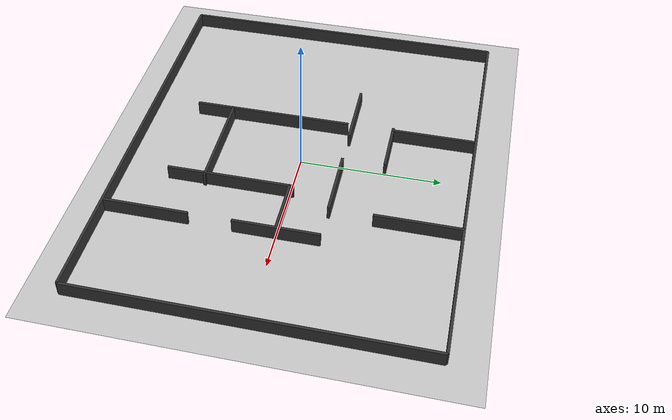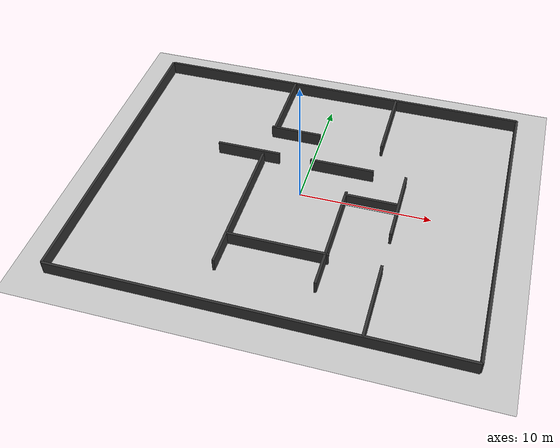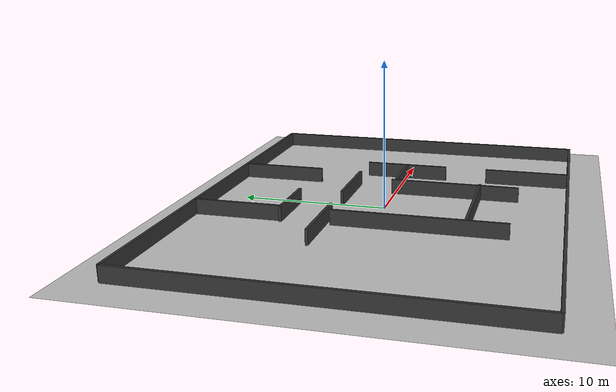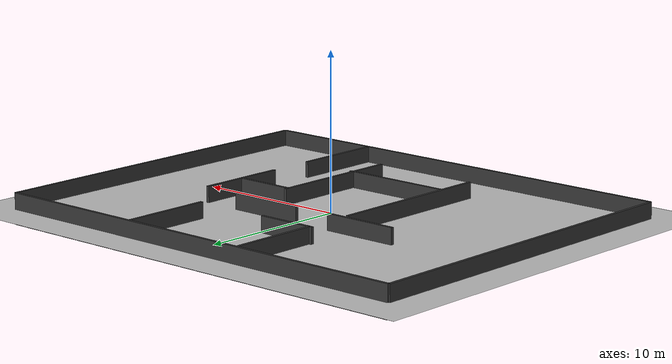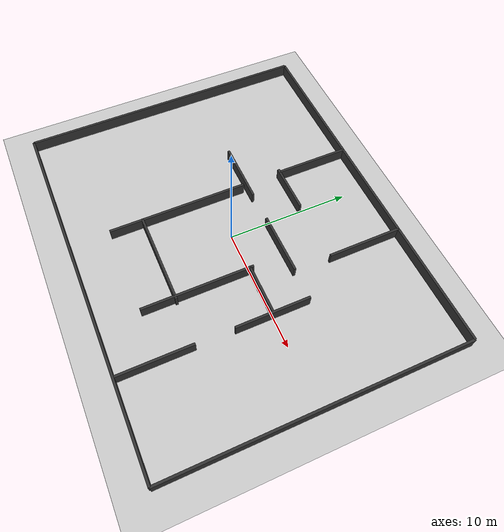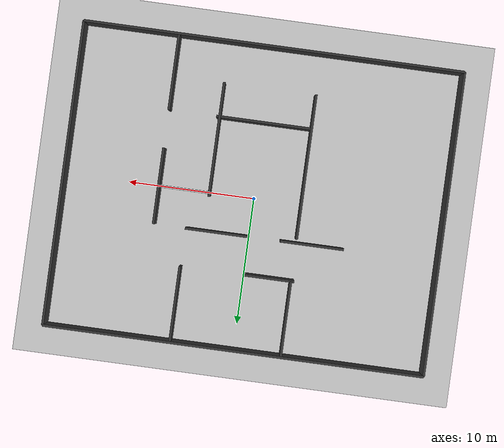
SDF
<?xml version="1.0" ?>
<sdf version='1.9'>
  <world name='test_world'>
    <physics name='1ms' type='ignored'>
      <max_step_size>0.001</max_step_size>
      <real_time_factor>1</real_time_factor>
      <real_time_update_rate>1000</real_time_update_rate>
    </physics>
    <plugin name='ignition::gazebo::systems::Physics' filename='ignition-gazebo-physics-system'/>
    <plugin name='ignition::gazebo::systems::UserCommands' filename='ignition-gazebo-user-commands-system'/>
    <plugin name='ignition::gazebo::systems::SceneBroadcaster' filename='ignition-gazebo-scene-broadcaster-system'/>

    <gravity>0 0 -9.8</gravity>
    <magnetic_field>6e-06 2.3e-05 -4.2e-05</magnetic_field>
    <atmosphere type='adiabatic'/>
    <scene>
      <ambient>0.4 0.4 0.4 1</ambient>
      <background>0.7 0.7 0.7 1</background>
      <shadows>true</shadows>
    </scene>

    <!-- ===== 地面 ===== -->
    <model name='ground_plane'>
      <static>true</static>
      <link name='link'>
        <collision name='collision'>
          <geometry>
            <plane>
              <normal>0 0 1</normal>
              <size>30 24</size>
            </plane>
          </geometry>
          <surface>
            <friction>
              <ode/>
            </friction>
            <bounce/>
            <contact/>
          </surface>
        </collision>
        <visual name='visual'>
          <geometry>
            <plane>
              <normal>0 0 1</normal>
              <size>30 24</size>
            </plane>
          </geometry>
          <material>
            <ambient>0.8 0.8 0.8 1</ambient>
            <diffuse>0.8 0.8 0.8 1</diffuse>
            <specular>0.8 0.8 0.8 1</specular>
          </material>
        </visual>
        <pose>0 0 0 0 0 0</pose>
        <inertial>
          <pose>0 0 0 0 0 0</pose>
          <mass>1</mass>
          <inertia>
            <ixx>1</ixx>
            <ixy>0</ixy>
            <ixz>0</ixz>
            <iyy>1</iyy>
            <iyz>0</iyz>
            <izz>1</izz>
          </inertia>
        </inertial>
        <enable_wind>false</enable_wind>
      </link>
      <pose>0 0 0 0 0 0</pose>
      <self_collide>false</self_collide>
    </model>

    <!-- ===== 灯光 ===== -->
    <light name='sun' type='directional'>
      <pose>0 0 10 0 0 0</pose>
      <cast_shadows>true</cast_shadows>
      <intensity>1</intensity>
      <direction>-0.5 0.1 -0.9</direction>
      <diffuse>0.8 0.8 0.8 1</diffuse>
      <specular>0.2 0.2 0.2 1</specular>
      <attenuation>
        <range>1000</range>
        <linear>0.01</linear>
        <constant>0.9</constant>
        <quadratic>0.001</quadratic>
      </attenuation>
      <spot>
        <inner_angle>0</inner_angle>
        <outer_angle>0</outer_angle>
        <falloff>0</falloff>
      </spot>
    </light>

    <!-- ===== 围墙 ===== -->
    <model name='wall'>
      <!-- 四边围墙 -->
      <link name='length_right'>
        <pose>0 -12 0 0 0 0</pose>
        <inertial>
          <mass>1.14395</mass>
          <inertia>
            <ixx>9.5329</ixx>
            <ixy>0</ixy>
            <ixz>0</ixz>
            <iyy>0.0238</iyy>
            <iyz>0</iyz>
            <izz>9.5567</izz>
          </inertia>
          <pose>0 0 0 0 0 0</pose>
        </inertial>
        <collision name='box_collision'>
          <geometry>
            <box>
              <size>30 0.1875 2</size>
            </box>
          </geometry>
          <surface>
            <friction>
              <ode/>
            </friction>
            <bounce/>
            <contact/>
          </surface>
        </collision>
        <visual name='box_visual'>
          <geometry>
            <box>
              <size>30 0.1875 2</size>
            </box>
          </geometry>
          <material>
            <ambient>0.2 0.2 0.2 1</ambient>
            <diffuse>0.2 0.2 0.2 1</diffuse>
            <specular>0.2 0.2 0.2 1</specular>
          </material>
        </visual>
        <enable_wind>false</enable_wind>
      </link>

      <link name='length_left'>
        <pose>0 12 0 0 0 0</pose>
        <inertial>
          <mass>1.14395</mass>
          <inertia>
            <ixx>9.5329</ixx>
            <ixy>0</ixy>
            <ixz>0</ixz>
            <iyy>0.0238</iyy>
            <iyz>0</iyz>
            <izz>9.5567</izz>
          </inertia>
          <pose>0 0 0 0 0 0</pose>
        </inertial>
        <collision name='box_collision'>
          <geometry>
            <box>
              <size>30 0.1875 2</size>
            </box>
          </geometry>
          <surface>
            <friction>
              <ode/>
            </friction>
            <bounce/>
            <contact/>
          </surface>
        </collision>
        <visual name='box_visual'>
          <geometry>
            <box>
              <size>30 0.1875 2</size>
            </box>
          </geometry>
          <material>
            <ambient>0.2 0.2 0.2 1</ambient>
            <diffuse>0.2 0.2 0.2 1</diffuse>
            <specular>0.2 0.2 0.2 1</specular>
          </material>
        </visual>
        <enable_wind>false</enable_wind>
      </link>

      <link name='width_right'>
        <pose>-15 0 0 0 0 0</pose>
        <inertial>
          <mass>1000</mass>
          <inertia>
            <ixx>0.16666</ixx>
            <ixy>0</ixy>
            <ixz>0</ixz>
            <iyy>0.16666</iyy>
            <iyz>0</iyz>
            <izz>0.16666</izz>
          </inertia>
          <pose>0 0 0 0 0 0</pose>
        </inertial>
        <collision name='box_collision'>
          <geometry>
            <box>
              <size>0.1875 24 2</size>
            </box>
          </geometry>
          <surface>
            <friction>
              <ode/>
            </friction>
            <bounce/>
            <contact/>
          </surface>
        </collision>
        <visual name='box_visual'>
          <geometry>
            <box>
              <size>0.1875 24 2</size>
            </box>
          </geometry>
          <material>
            <ambient>0.2 0.2 0.2 1</ambient>
            <diffuse>0.2 0.2 0.2 1</diffuse>
            <specular>0.2 0.2 0.2 1</specular>
          </material>
        </visual>
        <enable_wind>false</enable_wind>
      </link>

      <link name='width_left'>
        <pose>15 0 0 0 0 0</pose>
        <inertial>
          <mass>1000</mass>
          <inertia>
            <ixx>0.16666</ixx>
            <ixy>0</ixy>
            <ixz>0</ixz>
            <iyy>0.16666</iyy>
            <iyz>0</iyz>
            <izz>0.16666</izz>
          </inertia>
          <pose>0 0 0 0 0 0</pose>
        </inertial>
        <collision name='box_collision'>
          <geometry>
            <box>
              <size>0.1875 24 2</size>
            </box>
          </geometry>
          <surface>
            <friction>
              <ode/>
            </friction>
            <bounce/>
            <contact/>
          </surface>
        </collision>
        <visual name='box_visual'>
          <geometry>
            <box>
              <size>0.1875 24 2</size>
            </box>
          </geometry>
          <material>
            <ambient>0.2 0.2 0.2 1</ambient>
            <diffuse>0.2 0.2 0.2 1</diffuse>
            <specular>0.2 0.2 0.2 1</specular>
          </material>
        </visual>
        <enable_wind>false</enable_wind>
      </link>

      <!-- ===== 内部墙体（位置按30×24比例缩放，墙厚减半） ===== -->
      <!-- top_from_right_to_middle_width: pose 6,-9 → 7.5,-9; size 0.375,6 → 0.1875,6 -->
      <link name='top_from_right_to_middle_width'>
        <pose>7.5 -9 0 0 0 0</pose>
        <inertial>
          <mass>1000</mass>
          <inertia>
            <ixx>9.5329</ixx>
            <ixy>0</ixy>
            <ixz>0</ixz>
            <iyy>0.0238</iyy>
            <iyz>0</iyz>
            <izz>9.5567</izz>
          </inertia>
          <pose>0 0 0 0 0 0</pose>
        </inertial>
        <collision name='box_collision'>
          <geometry>
            <box>
              <size>0.1875 6 2</size>
            </box>
          </geometry>
          <surface>
            <friction>
              <ode/>
            </friction>
            <bounce/>
            <contact/>
          </surface>
        </collision>
        <visual name='box_visual'>
          <geometry>
            <box>
              <size>0.1875 6 2</size>
            </box>
          </geometry>
          <material>
            <ambient>0.2 0.2 0.2 1</ambient>
            <diffuse>0.2 0.2 0.2 1</diffuse>
            <specular>0.2 0.2 0.2 1</specular>
          </material>
        </visual>
        <enable_wind>false</enable_wind>
      </link>

      <!-- top_middle_width: pose 7.5,0; size 0.1875,6 -->
      <link name='top_middle_width'>
        <pose>7.5 0 0 0 0 0</pose>
        <inertial>
          <mass>1000</mass>
          <inertia>
            <ixx>9.5329</ixx>
            <ixy>0</ixy>
            <ixz>0</ixz>
            <iyy>0.0238</iyy>
            <iyz>0</iyz>
            <izz>9.5567</izz>
          </inertia>
          <pose>0 0 0 0 0 0</pose>
        </inertial>
        <collision name='box_collision'>
          <geometry>
            <box>
              <size>0.1875 6 2</size>
            </box>
          </geometry>
          <surface>
            <friction>
              <ode/>
            </friction>
            <bounce/>
            <contact/>
          </surface>
        </collision>
        <visual name='box_visual'>
          <geometry>
            <box>
              <size>0.1875 6 2</size>
            </box>
          </geometry>
          <material>
            <ambient>0.2 0.2 0.2 1</ambient>
            <diffuse>0.2 0.2 0.2 1</diffuse>
            <specular>0.2 0.2 0.2 1</specular>
          </material>
        </visual>
        <enable_wind>false</enable_wind>
      </link>

      <!-- top_left_length: pose 5,9; size 0.1875,6 -->
      <link name='top_left_length'>
        <pose>5 9 0 0 0 0</pose>
        <inertial>
          <mass>1000</mass>
          <inertia>
            <ixx>9.5329</ixx>
            <ixy>0</ixy>
            <ixz>0</ixz>
            <iyy>0.0238</iyy>
            <iyz>0</iyz>
            <izz>9.5567</izz>
          </inertia>
          <pose>0 0 0 0 0 0</pose>
        </inertial>
        <collision name='box_collision'>
          <geometry>
            <box>
              <size>0.1875 6 2</size>
            </box>
          </geometry>
          <surface>
            <friction>
              <ode/>
            </friction>
            <bounce/>
            <contact/>
          </surface>
        </collision>
        <visual name='box_visual'>
          <geometry>
            <box>
              <size>0.1875 6 2</size>
            </box>
          </geometry>
          <material>
            <ambient>0.2 0.2 0.2 1</ambient>
            <diffuse>0.2 0.2 0.2 1</diffuse>
            <specular>0.2 0.2 0.2 1</specular>
          </material>
        </visual>
        <enable_wind>false</enable_wind>
      </link>

      <!-- middle_length: pose 5.5,0; size 4,0.1875 -->
      <link name='middle_length'>
        <pose>5.5 0 0 0 0 0</pose>
        <inertial>
          <mass>1000</mass>
          <inertia>
            <ixx>9.5329</ixx>
            <ixy>0</ixy>
            <ixz>0</ixz>
            <iyy>0.0238</iyy>
            <iyz>0</iyz>
            <izz>9.5567</izz>
          </inertia>
          <pose>0 0 0 0 0 0</pose>
        </inertial>
        <collision name='box_collision'>
          <geometry>
            <box>
              <size>4 0.1875 2</size>
            </box>
          </geometry>
          <surface>
            <friction>
              <ode/>
            </friction>
            <bounce/>
            <contact/>
          </surface>
        </collision>
        <visual name='box_visual'>
          <geometry>
            <box>
              <size>4 0.1875 2</size>
            </box>
          </geometry>
          <material>
            <ambient>0.2 0.2 0.2 1</ambient>
            <diffuse>0.2 0.2 0.2 1</diffuse>
            <specular>0.2 0.2 0.2 1</specular>
          </material>
        </visual>
        <enable_wind>false</enable_wind>
      </link>

      <!-- middle_width: pose 3.5,-4.2; size 0.1875,9 -->
      <link name='middle_width'>
        <pose>3.5 -4.2 0 0 0 0</pose>
        <inertial>
          <mass>1000</mass>
          <inertia>
            <ixx>9.5329</ixx>
            <ixy>0</ixy>
            <ixz>0</ixz>
            <iyy>0.0238</iyy>
            <iyz>0</iyz>
            <izz>9.5567</izz>
          </inertia>
          <pose>0 0 0 0 0 0</pose>
        </inertial>
        <collision name='box_collision'>
          <geometry>
            <box>
              <size>0.1875 9 2</size>
            </box>
          </geometry>
          <surface>
            <friction>
              <ode/>
            </friction>
            <bounce/>
            <contact/>
          </surface>
        </collision>
        <visual name='box_visual'>
          <geometry>
            <box>
              <size>0.1875 9 2</size>
            </box>
          </geometry>
          <material>
            <ambient>0.2 0.2 0.2 1</ambient>
            <diffuse>0.2 0.2 0.2 1</diffuse>
            <specular>0.2 0.2 0.2 1</specular>
          </material>
        </visual>
        <enable_wind>false</enable_wind>
      </link>

      <!-- middle_left_length: pose 2.5,3; size 5,0.1875 -->
      <link name='middle_left_length'>
        <pose>2.5 3 0 0 0 0</pose>
        <inertial>
          <mass>1000</mass>
          <inertia>
            <ixx>9.5329</ixx>
            <ixy>0</ixy>
            <ixz>0</ixz>
            <iyy>0.0238</iyy>
            <iyz>0</iyz>
            <izz>9.5567</izz>
          </inertia>
          <pose>0 0 0 0 0 0</pose>
        </inertial>
        <collision name='box_collision'>
          <geometry>
            <box>
              <size>5 0.1875 2</size>
            </box>
          </geometry>
          <surface>
            <friction>
              <ode/>
            </friction>
            <bounce/>
            <contact/>
          </surface>
        </collision>
        <visual name='box_visual'>
          <geometry>
            <box>
              <size>5 0.1875 2</size>
            </box>
          </geometry>
          <material>
            <ambient>0.2 0.2 0.2 1</ambient>
            <diffuse>0.2 0.2 0.2 1</diffuse>
            <specular>0.2 0.2 0.2 1</specular>
          </material>
        </visual>
        <enable_wind>false</enable_wind>
      </link>

      <!-- low_left_length: pose -5,3; size 5,0.1875 -->
      <link name='low_left_length'>
        <pose>-5 3 0 0 0 0</pose>
        <inertial>
          <mass>1000</mass>
          <inertia>
            <ixx>9.5329</ixx>
            <ixy>0</ixy>
            <ixz>0</ixz>
            <iyy>0.0238</iyy>
            <iyz>0</iyz>
            <izz>9.5567</izz>
          </inertia>
          <pose>0 0 0 0 0 0</pose>
        </inertial>
        <collision name='box_collision'>
          <geometry>
            <box>
              <size>5 0.1875 2</size>
            </box>
          </geometry>
          <surface>
            <friction>
              <ode/>
            </friction>
            <bounce/>
            <contact/>
          </surface>
        </collision>
        <visual name='box_visual'>
          <geometry>
            <box>
              <size>5 0.1875 2</size>
            </box>
          </geometry>
          <material>
            <ambient>0.2 0.2 0.2 1</ambient>
            <diffuse>0.2 0.2 0.2 1</diffuse>
            <specular>0.2 0.2 0.2 1</specular>
          </material>
        </visual>
        <enable_wind>false</enable_wind>
      </link>

      <!-- left_blind_alley_left_wall: pose -2,6; size 4,0.1875 -->
      <link name='left_blind_alley_left_wall'>
        <pose>-2 6 0 0 0 0</pose>
        <inertial>
          <mass>1000</mass>
          <inertia>
            <ixx>9.5329</ixx>
            <ixy>0</ixy>
            <ixz>0</ixz>
            <iyy>0.0238</iyy>
            <iyz>0</iyz>
            <izz>9.5567</izz>
          </inertia>
          <pose>0 0 0 0 0 0</pose>
        </inertial>
        <collision name='box_collision'>
          <geometry>
            <box>
              <size>4 0.1875 2</size>
            </box>
          </geometry>
          <surface>
            <friction>
              <ode/>
            </friction>
            <bounce/>
            <contact/>
          </surface>
        </collision>
        <visual name='box_visual'>
          <geometry>
            <box>
              <size>4 0.1875 2</size>
            </box>
          </geometry>
          <material>
            <ambient>0.2 0.2 0.2 1</ambient>
            <diffuse>0.2 0.2 0.2 1</diffuse>
            <specular>0.2 0.2 0.2 1</specular>
          </material>
        </visual>
        <enable_wind>false</enable_wind>
      </link>

      <!-- left_blind_alley_bottom_wall: pose -3.75,9; size 0.1875,6 -->
      <link name='left_blind_alley_bottom_wall'>
        <pose>-3.75 9 0 0 0 0</pose>
        <inertial>
          <mass>1000</mass>
          <inertia>
            <ixx>9.5329</ixx>
            <ixy>0</ixy>
            <ixz>0</ixz>
            <iyy>0.0238</iyy>
            <iyz>0</iyz>
            <izz>9.5567</izz>
          </inertia>
          <pose>0 0 0 0 0 0</pose>
        </inertial>
        <collision name='box_collision'>
          <geometry>
            <box>
              <size>0.1875 6 2</size>
            </box>
          </geometry>
          <surface>
            <friction>
              <ode/>
            </friction>
            <bounce/>
            <contact/>
          </surface>
        </collision>
        <visual name='box_visual'>
          <geometry>
            <box>
              <size>0.1875 6 2</size>
            </box>
          </geometry>
          <material>
            <ambient>0.2 0.2 0.2 1</ambient>
            <diffuse>0.2 0.2 0.2 1</diffuse>
            <specular>0.2 0.2 0.2 1</specular>
          </material>
        </visual>
        <enable_wind>false</enable_wind>
      </link>

      <!-- left_bottom_width: pose -3.75,-3; size 0.1875,11.4 -->
      <link name='left_bottom_width'>
        <pose>-3.75 -3 0 0 0 0</pose>
        <inertial>
          <mass>1000</mass>
          <inertia>
            <ixx>9.5329</ixx>
            <ixy>0</ixy>
            <ixz>0</ixz>
            <iyy>0.0238</iyy>
            <iyz>0</iyz>
            <izz>9.5567</izz>
          </inertia>
          <pose>0 0 0 0 0 0</pose>
        </inertial>
        <collision name='box_collision'>
          <geometry>
            <box>
              <size>0.1875 11.4 2</size>
            </box>
          </geometry>
          <surface>
            <friction>
              <ode/>
            </friction>
            <bounce/>
            <contact/>
          </surface>
        </collision>
        <visual name='box_visual'>
          <geometry>
            <box>
              <size>0.1875 11.4 2</size>
            </box>
          </geometry>
          <material>
            <ambient>0.2 0.2 0.2 1</ambient>
            <diffuse>0.2 0.2 0.2 1</diffuse>
            <specular>0.2 0.2 0.2 1</specular>
          </material>
        </visual>
        <enable_wind>false</enable_wind>
      </link>

      <!-- right_middle_length: pose 0,-6; size 7.5,0.1875 -->
      <link name='right_middle_length'>
        <pose>0 -6 0 0 0 0</pose>
        <inertial>
          <mass>1000</mass>
          <inertia>
            <ixx>9.5329</ixx>
            <ixy>0</ixy>
            <ixz>0</ixz>
            <iyy>0.0238</iyy>
            <iyz>0</iyz>
            <izz>9.5567</izz>
          </inertia>
          <pose>0 0 0 0 0 0</pose>
        </inertial>
        <collision name='box_collision'>
          <geometry>
            <box>
              <size>7.5 0.1875 2</size>
            </box>
          </geometry>
          <surface>
            <friction>
              <ode/>
            </friction>
            <bounce/>
            <contact/>
          </surface>
        </collision>
        <visual name='box_visual'>
          <geometry>
            <box>
              <size>7.5 0.1875 2</size>
            </box>
          </geometry>
          <material>
            <ambient>0.2 0.2 0.2 1</ambient>
            <diffuse>0.2 0.2 0.2 1</diffuse>
            <specular>0.2 0.2 0.2 1</specular>
          </material>
        </visual>
        <enable_wind>false</enable_wind>
      </link>

      <static>true</static>
      <self_collide>false</self_collide>
    </model>
  </world>
</sdf>
